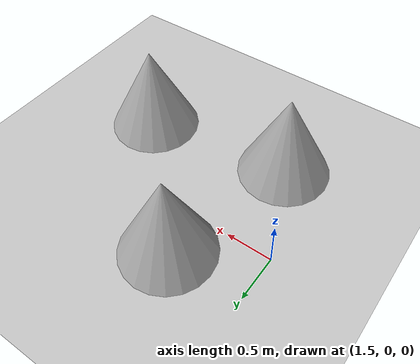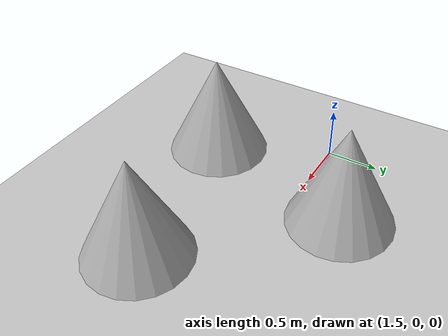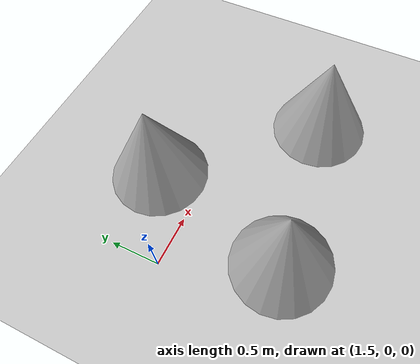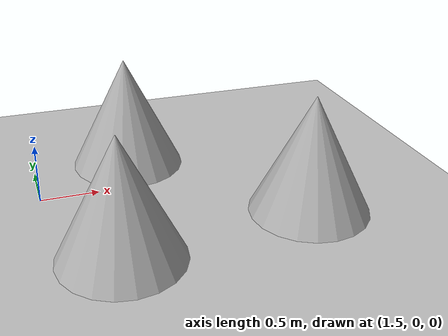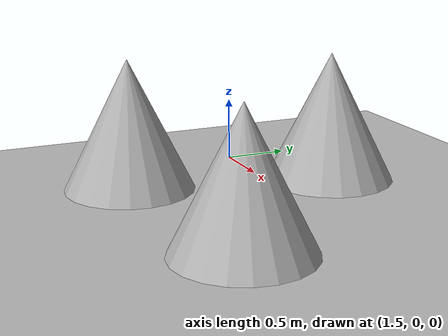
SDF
<?xml version="1.0" ?>
<sdf version='1.10'>
  <world name='world_demo'>
    <physics name='1ms' type='ignored'>
      <max_step_size>0.001</max_step_size>
      <real_time_factor>1</real_time_factor>
      <real_time_update_rate>1000</real_time_update_rate>
    </physics>
    <plugin name='ignition::gazebo::systems::Physics' filename='libignition-gazebo-physics-system.so'/>
    <plugin name='ignition::gazebo::systems::UserCommands' filename='libignition-gazebo-user-commands-system.so'/>
    <plugin name='ignition::gazebo::systems::SceneBroadcaster' filename='libignition-gazebo-scene-broadcaster-system.so'/>
    <plugin name='gz::sim::systems::TriggeredPublisher' filename='gz-sim-triggered-publisher-system'>
      <input type='gz.msgs.Int32' topic='/keyboard/keypress'>
        <match field='data'>16777235</match>
      </input>
      <output type='gz.msgs.Twist' topic='/cmd_vel'>linear: {x: 0.5}, angular: {z: 0.0}</output>
    </plugin>
    <plugin name='gz::sim::systems::TriggeredPublisher' filename='gz-sim-triggered-publisher-system'>
      <input type='gz.msgs.Int32' topic='/keyboard/keypress'>
        <match field='data'>16777237</match>
      </input>
      <output type='gz.msgs.Twist' topic='/cmd_vel'>linear: {x: -0.5}, angular: {z: 0}</output>
    </plugin>
    <plugin name='gz::sim::systems::TriggeredPublisher' filename='gz-sim-triggered-publisher-system'>
      <input type='gz.msgs.Int32' topic='/keyboard/keypress'>
        <match field='data'>16777234</match>
      </input>
      <output type='gz.msgs.Twist' topic='/cmd_vel'>linear: {x: 0}, angular: {z: 0.5}</output>
    </plugin>
    <plugin name='gz::sim::systems::TriggeredPublisher' filename='gz-sim-triggered-publisher-system'>
      <input type='gz.msgs.Int32' topic='/keyboard/keypress'>
        <match field='data'>16777236</match>
      </input>
      <output type='gz.msgs.Twist' topic='/cmd_vel'>linear: {x: 0}, angular: {z: -0.5}</output>
    </plugin>
    <plugin name='gz::sim::systems::UserCommands' filename='gz-sim-user-commands-system'/>
    <plugin name='gz::sim::systems::SceneBroadcaster' filename='gz-sim-scene-broadcaster-system'/>
    <gui fullscreen='false'>
      <plugin name='3D View' filename='GzScene3D'>
        <ignition-gui>
          <title>3D View</title>
          <property type='bool' key='showTitleBar'>false</property>
          <property type='string' key='state'>docked</property>
        </ignition-gui>
        <engine>ogre2</engine>
        <scene>scene</scene>
        <ambient_light>1.0 1.0 1.0</ambient_light>
        <background_color>0.8 0.8 0.8</background_color>
        <camera_pose>-6 0 6 0 0.5 0</camera_pose>
      </plugin>
      <plugin name='World control' filename='WorldControl'>
        <ignition-gui>
          <title>World control</title>
          <property type='bool' key='showTitleBar'>false</property>
          <property type='bool' key='resizable'>false</property>
          <property type='double' key='height'>72</property>
          <property type='double' key='width'>121</property>
          <property type='double' key='z'>1</property>
          <property type='string' key='state'>floating</property>
          <anchors target='3D View'>
            <line own='left' target='left'/>
            <line own='bottom' target='bottom'/>
          </anchors>
        </ignition-gui>
        <play_pause>true</play_pause>
        <step>true</step>
        <start_paused>true</start_paused>
        <service>/world/world_demo/control</service>
        <stats_topic>/world/world_demo/stats</stats_topic>
      </plugin>
      <plugin name='World stats' filename='WorldStats'>
        <gz-gui>
          <title>World stats</title>
          <property type='bool' key='showTitleBar'>false</property>
          <property type='bool' key='resizable'>false</property>
          <property type='double' key='height'>110</property>
          <property type='double' key='width'>290</property>
          <property type='double' key='z'>1</property>
          <property type='string' key='state'>floating</property>
          <anchors target='3D View'>
            <line own='right' target='right'/>
            <line own='bottom' target='bottom'/>
          </anchors>
        </gz-gui>
        <sim_time>true</sim_time>
        <real_time>true</real_time>
        <real_time_factor>true</real_time_factor>
        <iterations>true</iterations>
        <topic>/world/world_demo/stats</topic>
      </plugin>
      <plugin name='Entity tree' filename='EntityTree'/>
    </gui>
    <gravity>0 0 -9.8000000000000007</gravity>
    <magnetic_field>5.5644999999999998e-06 2.2875799999999999e-05 -4.2388400000000002e-05</magnetic_field>
    <atmosphere type='adiabatic'/>
    <scene>
      <ambient>0.400000006 0.400000006 0.400000006 1</ambient>
      <background>0.699999988 0.699999988 0.699999988 1</background>
      <shadows>true</shadows>
    </scene>
    <model name='ground_plane'>
      <static>true</static>
      <link name='link'>
        <collision name='collision'>
          <geometry>
            <plane>
              <normal>0 0 1</normal>
              <size>100 100</size>
            </plane>
          </geometry>
          <surface>
            <friction>
              <ode/>
            </friction>
            <bounce/>
            <contact/>
          </surface>
        </collision>
        <visual name='visual'>
          <geometry>
            <plane>
              <normal>0 0 1</normal>
              <size>100 100</size>
            </plane>
          </geometry>
          <material>
            <ambient>0.800000012 0.800000012 0.800000012 1</ambient>
            <diffuse>0.800000012 0.800000012 0.800000012 1</diffuse>
            <specular>0.800000012 0.800000012 0.800000012 1</specular>
          </material>
        </visual>
        <pose>0 0 0 0 0 0</pose>
        <inertial>
          <pose>0 0 0 0 0 0</pose>
          <mass>1</mass>
          <inertia>
            <ixx>1</ixx>
            <ixy>0</ixy>
            <ixz>0</ixz>
            <iyy>1</iyy>
            <iyz>0</iyz>
            <izz>1</izz>
          </inertia>
        </inertial>
        <enable_wind>false</enable_wind>
      </link>
      <pose>0 0 0 0 0 0</pose>
      <self_collide>false</self_collide>
    </model>
    <model name='cone'>
      <pose>2.3625796665569934 0.47738716926314811 0.49999999993296756 5.2541141453390149e-17 -7.7132841038725268e-10 -7.4173097782250489e-23</pose>
      <link name='cone_link'>
        <inertial>
          <inertia>
            <ixx>0.074999999999999997</ixx>
            <ixy>0</ixy>
            <ixz>0</ixz>
            <iyy>0.074999999999999997</iyy>
            <iyz>0</iyz>
            <izz>0.074999999999999997</izz>
          </inertia>
          <mass>1</mass>
          <pose>0 0 0 0 0 0</pose>
        </inertial>
        <collision name='cone_collision'>
          <geometry>
            <cone>
              <radius>0.5</radius>
              <length>1</length>
            </cone>
          </geometry>
          <surface>
            <friction>
              <ode/>
            </friction>
            <bounce/>
            <contact/>
          </surface>
        </collision>
        <visual name='cone_visual'>
          <geometry>
            <cone>
              <radius>0.5</radius>
              <length>1</length>
            </cone>
          </geometry>
          <material>
            <ambient>0.300000012 0.300000012 0.300000012 1</ambient>
            <diffuse>0.699999988 0.699999988 0.699999988 1</diffuse>
            <specular>1 1 1 1</specular>
          </material>
        </visual>
        <pose>0 0 0 0 0 0</pose>
        <enable_wind>false</enable_wind>
      </link>
      <static>false</static>
      <self_collide>false</self_collide>
    </model>
    <model name='cone_0'>
      <pose>1.9792522356654669 -1.0410615535165264 0.49999999993296756 5.2544931075677214e-17 -7.7132841038480847e-10 -7.6328321314384305e-23</pose>
      <link name='cone_link'>
        <inertial>
          <inertia>
            <ixx>0.074999999999999997</ixx>
            <ixy>0</ixy>
            <ixz>0</ixz>
            <iyy>0.074999999999999997</iyy>
            <iyz>0</iyz>
            <izz>0.074999999999999997</izz>
          </inertia>
          <mass>1</mass>
          <pose>0 0 0 0 0 0</pose>
        </inertial>
        <collision name='cone_collision'>
          <geometry>
            <cone>
              <radius>0.5</radius>
              <length>1</length>
            </cone>
          </geometry>
          <surface>
            <friction>
              <ode/>
            </friction>
            <bounce/>
            <contact/>
          </surface>
        </collision>
        <visual name='cone_visual'>
          <geometry>
            <cone>
              <radius>0.5</radius>
              <length>1</length>
            </cone>
          </geometry>
          <material>
            <ambient>0.300000012 0.300000012 0.300000012 1</ambient>
            <diffuse>0.699999988 0.699999988 0.699999988 1</diffuse>
            <specular>1 1 1 1</specular>
          </material>
        </visual>
        <pose>0 0 0 0 0 0</pose>
        <enable_wind>false</enable_wind>
      </link>
      <static>false</static>
      <self_collide>false</self_collide>
    </model>
    <model name='cone_1'>
      <pose>3.591385416394457 -0.82813135706078267 0.49999999993296756 5.254931119316858e-17 -7.7132841033999823e-10 6.969765996526587e-23</pose>
      <link name='cone_link'>
        <inertial>
          <inertia>
            <ixx>0.074999999999999997</ixx>
            <ixy>0</ixy>
            <ixz>0</ixz>
            <iyy>0.074999999999999997</iyy>
            <iyz>0</iyz>
            <izz>0.074999999999999997</izz>
          </inertia>
          <mass>1</mass>
          <pose>0 0 0 0 0 0</pose>
        </inertial>
        <collision name='cone_collision'>
          <geometry>
            <cone>
              <radius>0.5</radius>
              <length>1</length>
            </cone>
          </geometry>
          <surface>
            <friction>
              <ode/>
            </friction>
            <bounce/>
            <contact/>
          </surface>
        </collision>
        <visual name='cone_visual'>
          <geometry>
            <cone>
              <radius>0.5</radius>
              <length>1</length>
            </cone>
          </geometry>
          <material>
            <ambient>0.300000012 0.300000012 0.300000012 1</ambient>
            <diffuse>0.699999988 0.699999988 0.699999988 1</diffuse>
            <specular>1 1 1 1</specular>
          </material>
        </visual>
        <pose>0 0 0 0 0 0</pose>
        <enable_wind>false</enable_wind>
      </link>
      <static>false</static>
      <self_collide>false</self_collide>
    </model>
    <light name='sun' type='directional'>
      <pose>0 0 10 0 0 0</pose>
      <cast_shadows>true</cast_shadows>
      <intensity>1</intensity>
      <direction>-0.5 0.10000000000000001 -0.90000000000000002</direction>
      <diffuse>0.800000012 0.800000012 0.800000012 1</diffuse>
      <specular>0.200000003 0.200000003 0.200000003 1</specular>
      <attenuation>
        <range>1000</range>
        <linear>0.01</linear>
        <constant>0.90000000000000002</constant>
        <quadratic>0.001</quadratic>
      </attenuation>
      <spot>
        <inner_angle>0</inner_angle>
        <outer_angle>0</outer_angle>
        <falloff>0</falloff>
      </spot>
    </light>
  </world>
</sdf>
